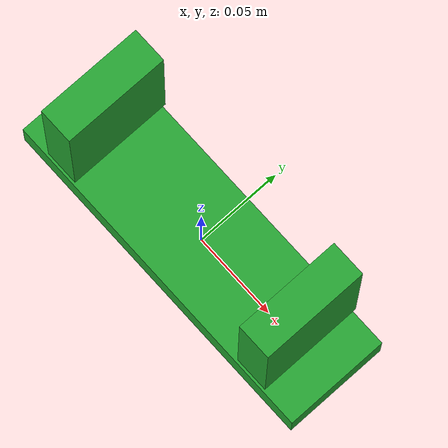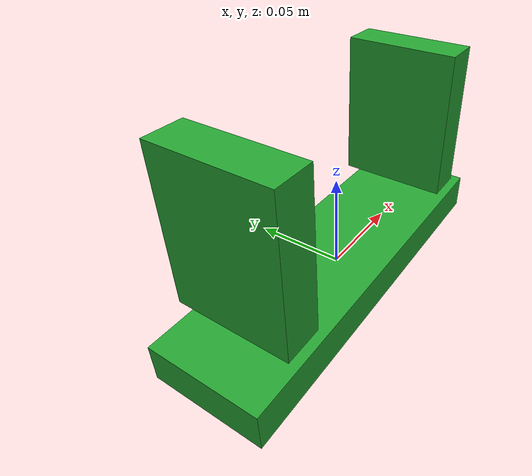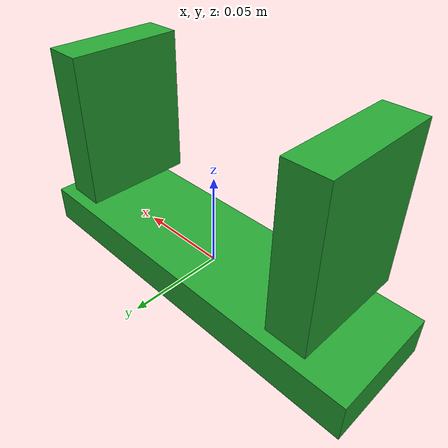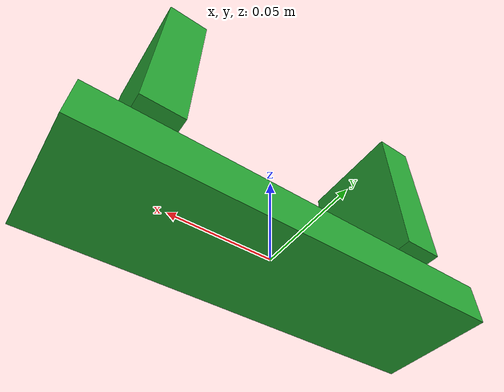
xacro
<?xml version="1.0"?>
<robot xmlns:xacro="http://www.ros.org/wiki/xacro">

    <link name="gripper_base_link">
        <visual>
            <geometry>
                <box size="0.2 0.06 0.02" />
            </geometry>
            <origin xyz="0 0 0" rpy="0 0 0" />
            <material name="dark_green" />
        </visual>
        <collision>
            <geometry>
                <box size="0.2 0.06 0.02" />
            </geometry>
            <origin xyz="0 0 0" rpy="0 0 0" />
        </collision>
    </link>

<link name="gripper_left_finger_link">
    <visual>
        <geometry>
            <box size="0.02 0.06 0.08" />
        </geometry>
        <origin xyz="0 0 0.04" rpy="0 0 0" />
        <material name="light_green" />
    </visual>
    <collision>
        <geometry>
            <box size="0.02 0.06 0.08" />
        </geometry>
        <origin xyz="0 0 0.04" rpy="0 0 0" />
    </collision>
</link>

<link name="gripper_right_finger_link">
    <visual>
        <geometry>
            <box size="0.02 0.06 0.08" />
        </geometry>
        <origin xyz="0 0 0.04" rpy="0 0 0" />
        <material name="light_green" />
    </visual>
    <collision>
        <geometry>
            <box size="0.02 0.06 0.08" />
        </geometry>
        <origin xyz="0 0 0.04" rpy="0 0 0" />
    </collision>
</link>

<joint name="gripper_left_finger_joint" type="prismatic">
    <parent link="gripper_base_link" />
    <child link="gripper_left_finger_link" />
    <origin xyz="-0.07 0 0.02" rpy="0 0 0" />
    <axis xyz="1 0 0" />
    <limit effort="1000.0" velocity="1.0" lower="0.0" upper="0.06" />
</joint>

<joint name="gripper_right_finger_joint" type="prismatic">
    <parent link="gripper_base_link" />
    <child link="gripper_right_finger_link" />
    <origin xyz="0.07 0 0.02" rpy="0 0 0" />
    <axis xyz="1 0 0" />
    <mimic joint="gripper_left_finger_joint" multiplier="-1.0" />
    <limit effort="1000.0" velocity="1.0" lower="-0.06" upper="0.0" />
</joint>

</robot>
